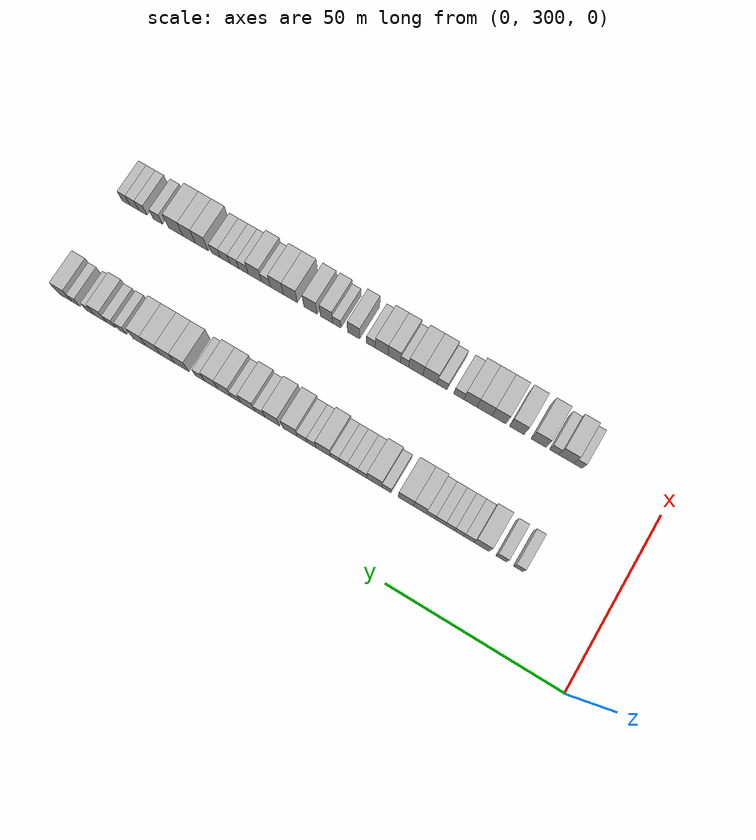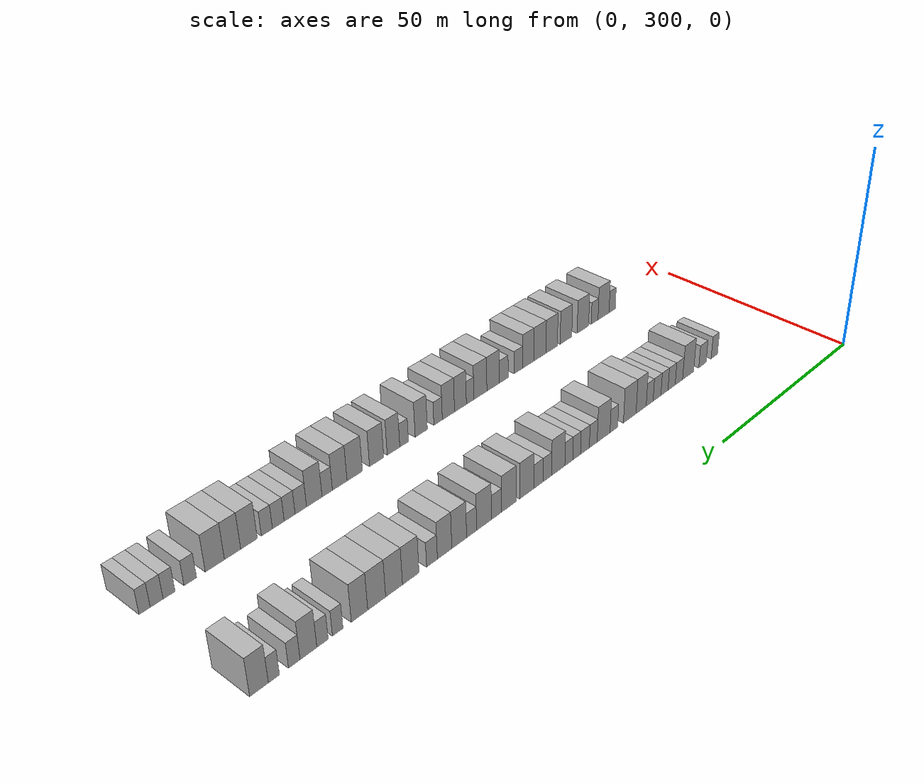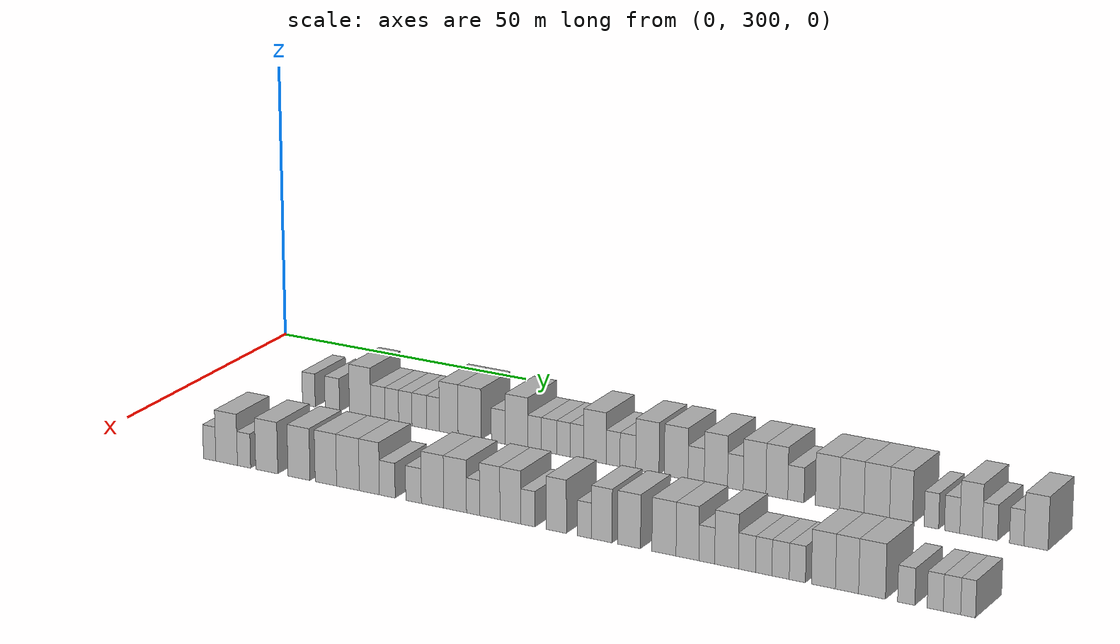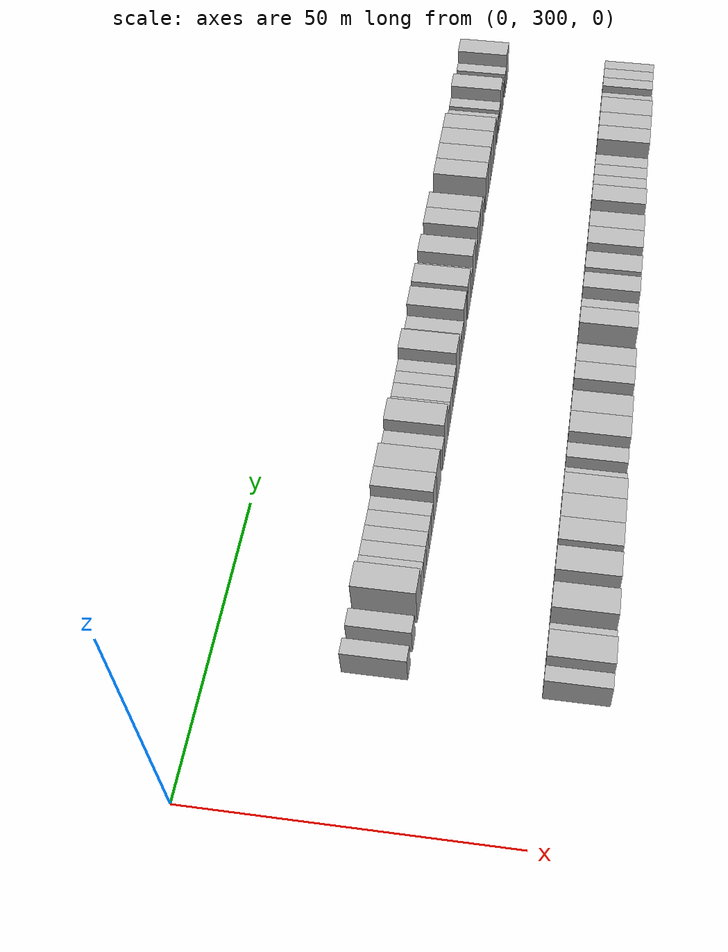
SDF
<sdf version="1.6">
 <world name="default">
  <model name="building_188">
   <static>1</static>
   <pose>25.0000 323.9807 0 0.000000 0.000000 0.000000</pose>
   <link name="link">
    <pose>0 0 3.00 0 0 0</pose>
    <collision name="collision"><geometry><box><size>10.0000 2.5865 6.0000</size></box></geometry></collision>
    <visual name="visual">
     <cast_shadows>0</cast_shadows>
     <geometry><box><size>10.0000 2.5865 6.0000</size></box></geometry>
     <material>
      <script>
       <uri>model://HANNAS_wall/materials/scripts</uri>
       <uri>model://HANNAS_wall/materials/textures</uri>
       <name>vrc/HANNAS_wall</name>
      </script>
     </material>
    </visual>
   </link>
  </model>
  <model name="building_189">
   <static>1</static>
   <pose>25.0000 328.7374 0 0.000000 0.000000 0.000000</pose>
   <link name="link">
    <pose>0 0 3.00 0 0 0</pose>
    <collision name="collision"><geometry><box><size>10.0000 2.9270 6.0000</size></box></geometry></collision>
    <visual name="visual">
     <cast_shadows>0</cast_shadows>
     <geometry><box><size>10.0000 2.9270 6.0000</size></box></geometry>
     <material>
      <script>
       <uri>model://HANNAS_wall/materials/scripts</uri>
       <uri>model://HANNAS_wall/materials/textures</uri>
       <name>vrc/HANNAS_wall</name>
      </script>
     </material>
    </visual>
   </link>
  </model>
  <model name="building_190">
   <static>1</static>
   <pose>25.0000 334.3430 0 0.000000 0.000000 0.000000</pose>
   <link name="link">
    <pose>0 0 4.50 0 0 0</pose>
    <collision name="collision"><geometry><box><size>10.0000 4.2843 9.0000</size></box></geometry></collision>
    <visual name="visual">
     <cast_shadows>0</cast_shadows>
     <geometry><box><size>10.0000 4.2843 9.0000</size></box></geometry>
     <material>
      <script>
       <uri>model://HANNAS_wall/materials/scripts</uri>
       <uri>model://HANNAS_wall/materials/textures</uri>
       <name>vrc/HANNAS_wall</name>
      </script>
     </material>
    </visual>
   </link>
  </model>
  <model name="building_191">
   <static>1</static>
   <pose>25.0000 337.9044 0 0.000000 0.000000 0.000000</pose>
   <link name="link">
    <pose>0 0 3.00 0 0 0</pose>
    <collision name="collision"><geometry><box><size>10.0000 2.8386 6.0000</size></box></geometry></collision>
    <visual name="visual">
     <cast_shadows>0</cast_shadows>
     <geometry><box><size>10.0000 2.8386 6.0000</size></box></geometry>
     <material>
      <script>
       <uri>model://HANNAS_wall/materials/scripts</uri>
       <uri>model://HANNAS_wall/materials/textures</uri>
       <name>vrc/HANNAS_wall</name>
      </script>
     </material>
    </visual>
   </link>
  </model>
  <model name="building_192">
   <static>1</static>
   <pose>25.0000 340.6883 0 0.000000 0.000000 0.000000</pose>
   <link name="link">
    <pose>0 0 3.00 0 0 0</pose>
    <collision name="collision"><geometry><box><size>10.0000 2.7292 6.0000</size></box></geometry></collision>
    <visual name="visual">
     <cast_shadows>0</cast_shadows>
     <geometry><box><size>10.0000 2.7292 6.0000</size></box></geometry>
     <material>
      <script>
       <uri>model://HANNAS_wall/materials/scripts</uri>
       <uri>model://HANNAS_wall/materials/textures</uri>
       <name>vrc/HANNAS_wall</name>
      </script>
     </material>
    </visual>
   </link>
  </model>
  <model name="building_193">
   <static>1</static>
   <pose>25.0000 343.3756 0 0.000000 0.000000 0.000000</pose>
   <link name="link">
    <pose>0 0 3.00 0 0 0</pose>
    <collision name="collision"><geometry><box><size>10.0000 2.6452 6.0000</size></box></geometry></collision>
    <visual name="visual">
     <cast_shadows>0</cast_shadows>
     <geometry><box><size>10.0000 2.6452 6.0000</size></box></geometry>
     <material>
      <script>
       <uri>model://HANNAS_wall/materials/scripts</uri>
       <uri>model://HANNAS_wall/materials/textures</uri>
       <name>vrc/HANNAS_wall</name>
      </script>
     </material>
    </visual>
   </link>
  </model>
  <model name="building_194">
   <static>1</static>
   <pose>25.0000 346.1372 0 0.000000 0.000000 0.000000</pose>
   <link name="link">
    <pose>0 0 3.00 0 0 0</pose>
    <collision name="collision"><geometry><box><size>10.0000 2.8781 6.0000</size></box></geometry></collision>
    <visual name="visual">
     <cast_shadows>0</cast_shadows>
     <geometry><box><size>10.0000 2.8781 6.0000</size></box></geometry>
     <material>
      <script>
       <uri>model://HANNAS_wall/materials/scripts</uri>
       <uri>model://HANNAS_wall/materials/textures</uri>
       <name>vrc/HANNAS_wall</name>
      </script>
     </material>
    </visual>
   </link>
  </model>
  <model name="building_195">
   <static>1</static>
   <pose>25.0000 348.8359 0 0.000000 0.000000 0.000000</pose>
   <link name="link">
    <pose>0 0 3.00 0 0 0</pose>
    <collision name="collision"><geometry><box><size>10.0000 2.5192 6.0000</size></box></geometry></collision>
    <visual name="visual">
     <cast_shadows>0</cast_shadows>
     <geometry><box><size>10.0000 2.5192 6.0000</size></box></geometry>
     <material>
      <script>
       <uri>model://HANNAS_wall/materials/scripts</uri>
       <uri>model://HANNAS_wall/materials/textures</uri>
       <name>vrc/HANNAS_wall</name>
      </script>
     </material>
    </visual>
   </link>
  </model>
  <model name="building_196">
   <static>1</static>
   <pose>25.0000 351.9249 0 0.000000 0.000000 0.000000</pose>
   <link name="link">
    <pose>0 0 4.50 0 0 0</pose>
    <collision name="collision"><geometry><box><size>10.0000 3.6588 9.0000</size></box></geometry></collision>
    <visual name="visual">
     <cast_shadows>0</cast_shadows>
     <geometry><box><size>10.0000 3.6588 9.0000</size></box></geometry>
     <material>
      <script>
       <uri>model://HANNAS_wall/materials/scripts</uri>
       <uri>model://HANNAS_wall/materials/textures</uri>
       <name>vrc/HANNAS_wall</name>
      </script>
     </material>
    </visual>
   </link>
  </model>
  <model name="building_197">
   <static>1</static>
   <pose>25.0000 355.9937 0 0.000000 0.000000 0.000000</pose>
   <link name="link">
    <pose>0 0 4.50 0 0 0</pose>
    <collision name="collision"><geometry><box><size>10.0000 4.4787 9.0000</size></box></geometry></collision>
    <visual name="visual">
     <cast_shadows>0</cast_shadows>
     <geometry><box><size>10.0000 4.4787 9.0000</size></box></geometry>
     <material>
      <script>
       <uri>model://HANNAS_wall/materials/scripts</uri>
       <uri>model://HANNAS_wall/materials/textures</uri>
       <name>vrc/HANNAS_wall</name>
      </script>
     </material>
    </visual>
   </link>
  </model>
  <model name="building_198">
   <static>1</static>
   <pose>25.0000 361.5609 0 0.000000 0.000000 0.000000</pose>
   <link name="link">
    <pose>0 0 3.00 0 0 0</pose>
    <collision name="collision"><geometry><box><size>10.0000 2.6557 6.0000</size></box></geometry></collision>
    <visual name="visual">
     <cast_shadows>0</cast_shadows>
     <geometry><box><size>10.0000 2.6557 6.0000</size></box></geometry>
     <material>
      <script>
       <uri>model://HANNAS_wall/materials/scripts</uri>
       <uri>model://HANNAS_wall/materials/textures</uri>
       <name>vrc/HANNAS_wall</name>
      </script>
     </material>
    </visual>
   </link>
  </model>
  <model name="building_199">
   <static>1</static>
   <pose>25.0000 365.0774 0 0.000000 0.000000 0.000000</pose>
   <link name="link">
    <pose>0 0 4.50 0 0 0</pose>
    <collision name="collision"><geometry><box><size>10.0000 4.3772 9.0000</size></box></geometry></collision>
    <visual name="visual">
     <cast_shadows>0</cast_shadows>
     <geometry><box><size>10.0000 4.3772 9.0000</size></box></geometry>
     <material>
      <script>
       <uri>model://HANNAS_wall/materials/scripts</uri>
       <uri>model://HANNAS_wall/materials/textures</uri>
       <name>vrc/HANNAS_wall</name>
      </script>
     </material>
    </visual>
   </link>
  </model>
  <model name="building_200">
   <static>1</static>
   <pose>25.0000 368.5722 0 0.000000 0.000000 0.000000</pose>
   <link name="link">
    <pose>0 0 3.00 0 0 0</pose>
    <collision name="collision"><geometry><box><size>10.0000 2.6124 6.0000</size></box></geometry></collision>
    <visual name="visual">
     <cast_shadows>0</cast_shadows>
     <geometry><box><size>10.0000 2.6124 6.0000</size></box></geometry>
     <material>
      <script>
       <uri>model://HANNAS_wall/materials/scripts</uri>
       <uri>model://HANNAS_wall/materials/textures</uri>
       <name>vrc/HANNAS_wall</name>
      </script>
     </material>
    </visual>
   </link>
  </model>
  <model name="building_201">
   <static>1</static>
   <pose>25.0000 371.3491 0 0.000000 0.000000 0.000000</pose>
   <link name="link">
    <pose>0 0 3.00 0 0 0</pose>
    <collision name="collision"><geometry><box><size>10.0000 2.9415 6.0000</size></box></geometry></collision>
    <visual name="visual">
     <cast_shadows>0</cast_shadows>
     <geometry><box><size>10.0000 2.9415 6.0000</size></box></geometry>
     <material>
      <script>
       <uri>model://HANNAS_wall/materials/scripts</uri>
       <uri>model://HANNAS_wall/materials/textures</uri>
       <name>vrc/HANNAS_wall</name>
      </script>
     </material>
    </visual>
   </link>
  </model>
  <model name="building_202">
   <static>1</static>
   <pose>25.0000 374.0878 0 0.000000 0.000000 0.000000</pose>
   <link name="link">
    <pose>0 0 3.00 0 0 0</pose>
    <collision name="collision"><geometry><box><size>10.0000 2.5358 6.0000</size></box></geometry></collision>
    <visual name="visual">
     <cast_shadows>0</cast_shadows>
     <geometry><box><size>10.0000 2.5358 6.0000</size></box></geometry>
     <material>
      <script>
       <uri>model://HANNAS_wall/materials/scripts</uri>
       <uri>model://HANNAS_wall/materials/textures</uri>
       <name>vrc/HANNAS_wall</name>
      </script>
     </material>
    </visual>
   </link>
  </model>
  <model name="building_203">
   <static>1</static>
   <pose>25.0000 376.6327 0 0.000000 0.000000 0.000000</pose>
   <link name="link">
    <pose>0 0 3.00 0 0 0</pose>
    <collision name="collision"><geometry><box><size>10.0000 2.5542 6.0000</size></box></geometry></collision>
    <visual name="visual">
     <cast_shadows>0</cast_shadows>
     <geometry><box><size>10.0000 2.5542 6.0000</size></box></geometry>
     <material>
      <script>
       <uri>model://HANNAS_wall/materials/scripts</uri>
       <uri>model://HANNAS_wall/materials/textures</uri>
       <name>vrc/HANNAS_wall</name>
      </script>
     </material>
    </visual>
   </link>
  </model>
  <model name="building_204">
   <static>1</static>
   <pose>25.0000 380.0240 0 0.000000 0.000000 0.000000</pose>
   <link name="link">
    <pose>0 0 4.50 0 0 0</pose>
    <collision name="collision"><geometry><box><size>10.0000 4.2283 9.0000</size></box></geometry></collision>
    <visual name="visual">
     <cast_shadows>0</cast_shadows>
     <geometry><box><size>10.0000 4.2283 9.0000</size></box></geometry>
     <material>
      <script>
       <uri>model://HANNAS_wall/materials/scripts</uri>
       <uri>model://HANNAS_wall/materials/textures</uri>
       <name>vrc/HANNAS_wall</name>
      </script>
     </material>
    </visual>
   </link>
  </model>
  <model name="building_205">
   <static>1</static>
   <pose>25.0000 383.4367 0 0.000000 0.000000 0.000000</pose>
   <link name="link">
    <pose>0 0 3.00 0 0 0</pose>
    <collision name="collision"><geometry><box><size>10.0000 2.5972 6.0000</size></box></geometry></collision>
    <visual name="visual">
     <cast_shadows>0</cast_shadows>
     <geometry><box><size>10.0000 2.5972 6.0000</size></box></geometry>
     <material>
      <script>
       <uri>model://HANNAS_wall/materials/scripts</uri>
       <uri>model://HANNAS_wall/materials/textures</uri>
       <name>vrc/HANNAS_wall</name>
      </script>
     </material>
    </visual>
   </link>
  </model>
  <model name="building_206">
   <static>1</static>
   <pose>25.0000 386.1969 0 0.000000 0.000000 0.000000</pose>
   <link name="link">
    <pose>0 0 3.00 0 0 0</pose>
    <collision name="collision"><geometry><box><size>10.0000 2.9231 6.0000</size></box></geometry></collision>
    <visual name="visual">
     <cast_shadows>0</cast_shadows>
     <geometry><box><size>10.0000 2.9231 6.0000</size></box></geometry>
     <material>
      <script>
       <uri>model://HANNAS_wall/materials/scripts</uri>
       <uri>model://HANNAS_wall/materials/textures</uri>
       <name>vrc/HANNAS_wall</name>
      </script>
     </material>
    </visual>
   </link>
  </model>
  <model name="building_207">
   <static>1</static>
   <pose>25.0000 389.8238 0 0.000000 0.000000 0.000000</pose>
   <link name="link">
    <pose>0 0 4.50 0 0 0</pose>
    <collision name="collision"><geometry><box><size>10.0000 4.3306 9.0000</size></box></geometry></collision>
    <visual name="visual">
     <cast_shadows>0</cast_shadows>
     <geometry><box><size>10.0000 4.3306 9.0000</size></box></geometry>
     <material>
      <script>
       <uri>model://HANNAS_wall/materials/scripts</uri>
       <uri>model://HANNAS_wall/materials/textures</uri>
       <name>vrc/HANNAS_wall</name>
      </script>
     </material>
    </visual>
   </link>
  </model>
  <model name="building_208">
   <static>1</static>
   <pose>25.0000 395.1652 0 0.000000 0.000000 0.000000</pose>
   <link name="link">
    <pose>0 0 4.50 0 0 0</pose>
    <collision name="collision"><geometry><box><size>10.0000 4.3523 9.0000</size></box></geometry></collision>
    <visual name="visual">
     <cast_shadows>0</cast_shadows>
     <geometry><box><size>10.0000 4.3523 9.0000</size></box></geometry>
     <material>
      <script>
       <uri>model://HANNAS_wall/materials/scripts</uri>
       <uri>model://HANNAS_wall/materials/textures</uri>
       <name>vrc/HANNAS_wall</name>
      </script>
     </material>
    </visual>
   </link>
  </model>
  <model name="building_209">
   <static>1</static>
   <pose>25.0000 398.8283 0 0.000000 0.000000 0.000000</pose>
   <link name="link">
    <pose>0 0 3.00 0 0 0</pose>
    <collision name="collision"><geometry><box><size>10.0000 2.9739 6.0000</size></box></geometry></collision>
    <visual name="visual">
     <cast_shadows>0</cast_shadows>
     <geometry><box><size>10.0000 2.9739 6.0000</size></box></geometry>
     <material>
      <script>
       <uri>model://HANNAS_wall/materials/scripts</uri>
       <uri>model://HANNAS_wall/materials/textures</uri>
       <name>vrc/HANNAS_wall</name>
      </script>
     </material>
    </visual>
   </link>
  </model>
  <model name="building_210">
   <static>1</static>
   <pose>25.0000 402.4462 0 0.000000 0.000000 0.000000</pose>
   <link name="link">
    <pose>0 0 4.50 0 0 0</pose>
    <collision name="collision"><geometry><box><size>10.0000 4.2618 9.0000</size></box></geometry></collision>
    <visual name="visual">
     <cast_shadows>0</cast_shadows>
     <geometry><box><size>10.0000 4.2618 9.0000</size></box></geometry>
     <material>
      <script>
       <uri>model://HANNAS_wall/materials/scripts</uri>
       <uri>model://HANNAS_wall/materials/textures</uri>
       <name>vrc/HANNAS_wall</name>
      </script>
     </material>
    </visual>
   </link>
  </model>
  <model name="building_211">
   <static>1</static>
   <pose>25.0000 405.9986 0 0.000000 0.000000 0.000000</pose>
   <link name="link">
    <pose>0 0 3.00 0 0 0</pose>
    <collision name="collision"><geometry><box><size>10.0000 2.8429 6.0000</size></box></geometry></collision>
    <visual name="visual">
     <cast_shadows>0</cast_shadows>
     <geometry><box><size>10.0000 2.8429 6.0000</size></box></geometry>
     <material>
      <script>
       <uri>model://HANNAS_wall/materials/scripts</uri>
       <uri>model://HANNAS_wall/materials/textures</uri>
       <name>vrc/HANNAS_wall</name>
      </script>
     </material>
    </visual>
   </link>
  </model>
  <model name="building_212">
   <static>1</static>
   <pose>25.0000 409.4675 0 0.000000 0.000000 0.000000</pose>
   <link name="link">
    <pose>0 0 4.50 0 0 0</pose>
    <collision name="collision"><geometry><box><size>10.0000 4.0949 9.0000</size></box></geometry></collision>
    <visual name="visual">
     <cast_shadows>0</cast_shadows>
     <geometry><box><size>10.0000 4.0949 9.0000</size></box></geometry>
     <material>
      <script>
       <uri>model://HANNAS_wall/materials/scripts</uri>
       <uri>model://HANNAS_wall/materials/textures</uri>
       <name>vrc/HANNAS_wall</name>
      </script>
     </material>
    </visual>
   </link>
  </model>
  <model name="building_213">
   <static>1</static>
   <pose>25.0000 413.4769 0 0.000000 0.000000 0.000000</pose>
   <link name="link">
    <pose>0 0 4.50 0 0 0</pose>
    <collision name="collision"><geometry><box><size>10.0000 3.9239 9.0000</size></box></geometry></collision>
    <visual name="visual">
     <cast_shadows>0</cast_shadows>
     <geometry><box><size>10.0000 3.9239 9.0000</size></box></geometry>
     <material>
      <script>
       <uri>model://HANNAS_wall/materials/scripts</uri>
       <uri>model://HANNAS_wall/materials/textures</uri>
       <name>vrc/HANNAS_wall</name>
      </script>
     </material>
    </visual>
   </link>
  </model>
  <model name="building_214">
   <static>1</static>
   <pose>25.0000 416.8911 0 0.000000 0.000000 0.000000</pose>
   <link name="link">
    <pose>0 0 3.00 0 0 0</pose>
    <collision name="collision"><geometry><box><size>10.0000 2.9045 6.0000</size></box></geometry></collision>
    <visual name="visual">
     <cast_shadows>0</cast_shadows>
     <geometry><box><size>10.0000 2.9045 6.0000</size></box></geometry>
     <material>
      <script>
       <uri>model://HANNAS_wall/materials/scripts</uri>
       <uri>model://HANNAS_wall/materials/textures</uri>
       <name>vrc/HANNAS_wall</name>
      </script>
     </material>
    </visual>
   </link>
  </model>
  <model name="building_215">
   <static>1</static>
   <pose>25.0000 422.4939 0 0.000000 0.000000 0.000000</pose>
   <link name="link">
    <pose>0 0 4.50 0 0 0</pose>
    <collision name="collision"><geometry><box><size>10.0000 4.3011 9.0000</size></box></geometry></collision>
    <visual name="visual">
     <cast_shadows>0</cast_shadows>
     <geometry><box><size>10.0000 4.3011 9.0000</size></box></geometry>
     <material>
      <script>
       <uri>model://HANNAS_wall/materials/scripts</uri>
       <uri>model://HANNAS_wall/materials/textures</uri>
       <name>vrc/HANNAS_wall</name>
      </script>
     </material>
    </visual>
   </link>
  </model>
  <model name="building_216">
   <static>1</static>
   <pose>25.0000 426.7896 0 0.000000 0.000000 0.000000</pose>
   <link name="link">
    <pose>0 0 4.50 0 0 0</pose>
    <collision name="collision"><geometry><box><size>10.0000 4.2901 9.0000</size></box></geometry></collision>
    <visual name="visual">
     <cast_shadows>0</cast_shadows>
     <geometry><box><size>10.0000 4.2901 9.0000</size></box></geometry>
     <material>
      <script>
       <uri>model://HANNAS_wall/materials/scripts</uri>
       <uri>model://HANNAS_wall/materials/textures</uri>
       <name>vrc/HANNAS_wall</name>
      </script>
     </material>
    </visual>
   </link>
  </model>
  <model name="building_217">
   <static>1</static>
   <pose>25.0000 431.1715 0 0.000000 0.000000 0.000000</pose>
   <link name="link">
    <pose>0 0 4.50 0 0 0</pose>
    <collision name="collision"><geometry><box><size>10.0000 4.4737 9.0000</size></box></geometry></collision>
    <visual name="visual">
     <cast_shadows>0</cast_shadows>
     <geometry><box><size>10.0000 4.4737 9.0000</size></box></geometry>
     <material>
      <script>
       <uri>model://HANNAS_wall/materials/scripts</uri>
       <uri>model://HANNAS_wall/materials/textures</uri>
       <name>vrc/HANNAS_wall</name>
      </script>
     </material>
    </visual>
   </link>
  </model>
  <model name="building_218">
   <static>1</static>
   <pose>25.0000 435.4117 0 0.000000 0.000000 0.000000</pose>
   <link name="link">
    <pose>0 0 4.50 0 0 0</pose>
    <collision name="collision"><geometry><box><size>10.0000 4.0068 9.0000</size></box></geometry></collision>
    <visual name="visual">
     <cast_shadows>0</cast_shadows>
     <geometry><box><size>10.0000 4.0068 9.0000</size></box></geometry>
     <material>
      <script>
       <uri>model://HANNAS_wall/materials/scripts</uri>
       <uri>model://HANNAS_wall/materials/textures</uri>
       <name>vrc/HANNAS_wall</name>
      </script>
     </material>
    </visual>
   </link>
  </model>
  <model name="building_219">
   <static>1</static>
   <pose>25.0000 440.6650 0 0.000000 0.000000 0.000000</pose>
   <link name="link">
    <pose>0 0 3.00 0 0 0</pose>
    <collision name="collision"><geometry><box><size>10.0000 2.4998 6.0000</size></box></geometry></collision>
    <visual name="visual">
     <cast_shadows>0</cast_shadows>
     <geometry><box><size>10.0000 2.4998 6.0000</size></box></geometry>
     <material>
      <script>
       <uri>model://HANNAS_wall/materials/scripts</uri>
       <uri>model://HANNAS_wall/materials/textures</uri>
       <name>vrc/HANNAS_wall</name>
      </script>
     </material>
    </visual>
   </link>
  </model>
  <model name="building_220">
   <static>1</static>
   <pose>25.0000 444.2324 0 0.000000 0.000000 0.000000</pose>
   <link name="link">
    <pose>0 0 3.00 0 0 0</pose>
    <collision name="collision"><geometry><box><size>10.0000 2.6349 6.0000</size></box></geometry></collision>
    <visual name="visual">
     <cast_shadows>0</cast_shadows>
     <geometry><box><size>10.0000 2.6349 6.0000</size></box></geometry>
     <material>
      <script>
       <uri>model://HANNAS_wall/materials/scripts</uri>
       <uri>model://HANNAS_wall/materials/textures</uri>
       <name>vrc/HANNAS_wall</name>
      </script>
     </material>
    </visual>
   </link>
  </model>
  <model name="building_221">
   <static>1</static>
   <pose>25.0000 447.4698 0 0.000000 0.000000 0.000000</pose>
   <link name="link">
    <pose>0 0 4.50 0 0 0</pose>
    <collision name="collision"><geometry><box><size>10.0000 3.8400 9.0000</size></box></geometry></collision>
    <visual name="visual">
     <cast_shadows>0</cast_shadows>
     <geometry><box><size>10.0000 3.8400 9.0000</size></box></geometry>
     <material>
      <script>
       <uri>model://HANNAS_wall/materials/scripts</uri>
       <uri>model://HANNAS_wall/materials/textures</uri>
       <name>vrc/HANNAS_wall</name>
      </script>
     </material>
    </visual>
   </link>
  </model>
  <model name="building_222">
   <static>1</static>
   <pose>25.0000 450.6945 0 0.000000 0.000000 0.000000</pose>
   <link name="link">
    <pose>0 0 3.00 0 0 0</pose>
    <collision name="collision"><geometry><box><size>10.0000 2.6095 6.0000</size></box></geometry></collision>
    <visual name="visual">
     <cast_shadows>0</cast_shadows>
     <geometry><box><size>10.0000 2.6095 6.0000</size></box></geometry>
     <material>
      <script>
       <uri>model://HANNAS_wall/materials/scripts</uri>
       <uri>model://HANNAS_wall/materials/textures</uri>
       <name>vrc/HANNAS_wall</name>
      </script>
     </material>
    </visual>
   </link>
  </model>
  <model name="building_223">
   <static>1</static>
   <pose>25.0000 455.2164 0 0.000000 0.000000 0.000000</pose>
   <link name="link">
    <pose>0 0 3.00 0 0 0</pose>
    <collision name="collision"><geometry><box><size>10.0000 2.4341 6.0000</size></box></geometry></collision>
    <visual name="visual">
     <cast_shadows>0</cast_shadows>
     <geometry><box><size>10.0000 2.4341 6.0000</size></box></geometry>
     <material>
      <script>
       <uri>model://HANNAS_wall/materials/scripts</uri>
       <uri>model://HANNAS_wall/materials/textures</uri>
       <name>vrc/HANNAS_wall</name>
      </script>
     </material>
    </visual>
   </link>
  </model>
  <model name="building_224">
   <static>1</static>
   <pose>25.0000 458.4629 0 0.000000 0.000000 0.000000</pose>
   <link name="link">
    <pose>0 0 4.50 0 0 0</pose>
    <collision name="collision"><geometry><box><size>10.0000 4.0589 9.0000</size></box></geometry></collision>
    <visual name="visual">
     <cast_shadows>0</cast_shadows>
     <geometry><box><size>10.0000 4.0589 9.0000</size></box></geometry>
     <material>
      <script>
       <uri>model://HANNAS_wall/materials/scripts</uri>
       <uri>model://HANNAS_wall/materials/textures</uri>
       <name>vrc/HANNAS_wall</name>
      </script>
     </material>
    </visual>
   </link>
  </model>
  <model name="building_410">
   <static>1</static>
   <pose>55.0000 323.6067 0 0.000000 0.000000 0.000000</pose>
   <link name="link">
    <pose>0 0 3.00 0 0 0</pose>
    <collision name="collision"><geometry><box><size>10.0000 2.4606 6.0000</size></box></geometry></collision>
    <visual name="visual">
     <cast_shadows>0</cast_shadows>
     <geometry><box><size>10.0000 2.4606 6.0000</size></box></geometry>
     <material>
      <script>
       <uri>model://HANNAS_wall/materials/scripts</uri>
       <uri>model://HANNAS_wall/materials/textures</uri>
       <name>vrc/HANNAS_wall</name>
      </script>
     </material>
    </visual>
   </link>
  </model>
  <model name="building_411">
   <static>1</static>
   <pose>55.0000 326.9753 0 0.000000 0.000000 0.000000</pose>
   <link name="link">
    <pose>0 0 4.50 0 0 0</pose>
    <collision name="collision"><geometry><box><size>10.0000 4.2767 9.0000</size></box></geometry></collision>
    <visual name="visual">
     <cast_shadows>0</cast_shadows>
     <geometry><box><size>10.0000 4.2767 9.0000</size></box></geometry>
     <material>
      <script>
       <uri>model://HANNAS_wall/materials/scripts</uri>
       <uri>model://HANNAS_wall/materials/textures</uri>
       <name>vrc/HANNAS_wall</name>
      </script>
     </material>
    </visual>
   </link>
  </model>
  <model name="building_412">
   <static>1</static>
   <pose>55.0000 330.4139 0 0.000000 0.000000 0.000000</pose>
   <link name="link">
    <pose>0 0 3.00 0 0 0</pose>
    <collision name="collision"><geometry><box><size>10.0000 2.6005 6.0000</size></box></geometry></collision>
    <visual name="visual">
     <cast_shadows>0</cast_shadows>
     <geometry><box><size>10.0000 2.6005 6.0000</size></box></geometry>
     <material>
      <script>
       <uri>model://HANNAS_wall/materials/scripts</uri>
       <uri>model://HANNAS_wall/materials/textures</uri>
       <name>vrc/HANNAS_wall</name>
      </script>
     </material>
    </visual>
   </link>
  </model>
  <model name="building_413">
   <static>1</static>
   <pose>55.0000 334.8747 0 0.000000 0.000000 0.000000</pose>
   <link name="link">
    <pose>0 0 4.50 0 0 0</pose>
    <collision name="collision"><geometry><box><size>10.0000 4.3212 9.0000</size></box></geometry></collision>
    <visual name="visual">
     <cast_shadows>0</cast_shadows>
     <geometry><box><size>10.0000 4.3212 9.0000</size></box></geometry>
     <material>
      <script>
       <uri>model://HANNAS_wall/materials/scripts</uri>
       <uri>model://HANNAS_wall/materials/textures</uri>
       <name>vrc/HANNAS_wall</name>
      </script>
     </material>
    </visual>
   </link>
  </model>
  <model name="building_414">
   <static>1</static>
   <pose>55.0000 341.1631 0 0.000000 0.000000 0.000000</pose>
   <link name="link">
    <pose>0 0 4.50 0 0 0</pose>
    <collision name="collision"><geometry><box><size>10.0000 4.2555 9.0000</size></box></geometry></collision>
    <visual name="visual">
     <cast_shadows>0</cast_shadows>
     <geometry><box><size>10.0000 4.2555 9.0000</size></box></geometry>
     <material>
      <script>
       <uri>model://HANNAS_wall/materials/scripts</uri>
       <uri>model://HANNAS_wall/materials/textures</uri>
       <name>vrc/HANNAS_wall</name>
      </script>
     </material>
    </visual>
   </link>
  </model>
  <model name="building_415">
   <static>1</static>
   <pose>55.0000 346.3459 0 0.000000 0.000000 0.000000</pose>
   <link name="link">
    <pose>0 0 4.50 0 0 0</pose>
    <collision name="collision"><geometry><box><size>10.0000 4.1101 9.0000</size></box></geometry></collision>
    <visual name="visual">
     <cast_shadows>0</cast_shadows>
     <geometry><box><size>10.0000 4.1101 9.0000</size></box></geometry>
     <material>
      <script>
       <uri>model://HANNAS_wall/materials/scripts</uri>
       <uri>model://HANNAS_wall/materials/textures</uri>
       <name>vrc/HANNAS_wall</name>
      </script>
     </material>
    </visual>
   </link>
  </model>
  <model name="building_416">
   <static>1</static>
   <pose>55.0000 350.5817 0 0.000000 0.000000 0.000000</pose>
   <link name="link">
    <pose>0 0 4.50 0 0 0</pose>
    <collision name="collision"><geometry><box><size>10.0000 4.3614 9.0000</size></box></geometry></collision>
    <visual name="visual">
     <cast_shadows>0</cast_shadows>
     <geometry><box><size>10.0000 4.3614 9.0000</size></box></geometry>
     <material>
      <script>
       <uri>model://HANNAS_wall/materials/scripts</uri>
       <uri>model://HANNAS_wall/materials/textures</uri>
       <name>vrc/HANNAS_wall</name>
      </script>
     </material>
    </visual>
   </link>
  </model>
  <model name="building_417">
   <static>1</static>
   <pose>55.0000 354.6729 0 0.000000 0.000000 0.000000</pose>
   <link name="link">
    <pose>0 0 4.50 0 0 0</pose>
    <collision name="collision"><geometry><box><size>10.0000 3.8210 9.0000</size></box></geometry></collision>
    <visual name="visual">
     <cast_shadows>0</cast_shadows>
     <geometry><box><size>10.0000 3.8210 9.0000</size></box></geometry>
     <material>
      <script>
       <uri>model://HANNAS_wall/materials/scripts</uri>
       <uri>model://HANNAS_wall/materials/textures</uri>
       <name>vrc/HANNAS_wall</name>
      </script>
     </material>
    </visual>
   </link>
  </model>
  <model name="building_418">
   <static>1</static>
   <pose>55.0000 358.0732 0 0.000000 0.000000 0.000000</pose>
   <link name="link">
    <pose>0 0 3.00 0 0 0</pose>
    <collision name="collision"><geometry><box><size>10.0000 2.9796 6.0000</size></box></geometry></collision>
    <visual name="visual">
     <cast_shadows>0</cast_shadows>
     <geometry><box><size>10.0000 2.9796 6.0000</size></box></geometry>
     <material>
      <script>
       <uri>model://HANNAS_wall/materials/scripts</uri>
       <uri>model://HANNAS_wall/materials/textures</uri>
       <name>vrc/HANNAS_wall</name>
      </script>
     </material>
    </visual>
   </link>
  </model>
  <model name="building_419">
   <static>1</static>
   <pose>55.0000 363.0201 0 0.000000 0.000000 0.000000</pose>
   <link name="link">
    <pose>0 0 3.00 0 0 0</pose>
    <collision name="collision"><geometry><box><size>10.0000 2.9141 6.0000</size></box></geometry></collision>
    <visual name="visual">
     <cast_shadows>0</cast_shadows>
     <geometry><box><size>10.0000 2.9141 6.0000</size></box></geometry>
     <material>
      <script>
       <uri>model://HANNAS_wall/materials/scripts</uri>
       <uri>model://HANNAS_wall/materials/textures</uri>
       <name>vrc/HANNAS_wall</name>
      </script>
     </material>
    </visual>
   </link>
  </model>
  <model name="building_420">
   <static>1</static>
   <pose>55.0000 366.5720 0 0.000000 0.000000 0.000000</pose>
   <link name="link">
    <pose>0 0 4.50 0 0 0</pose>
    <collision name="collision"><geometry><box><size>10.0000 4.1897 9.0000</size></box></geometry></collision>
    <visual name="visual">
     <cast_shadows>0</cast_shadows>
     <geometry><box><size>10.0000 4.1897 9.0000</size></box></geometry>
     <material>
      <script>
       <uri>model://HANNAS_wall/materials/scripts</uri>
       <uri>model://HANNAS_wall/materials/textures</uri>
       <name>vrc/HANNAS_wall</name>
      </script>
     </material>
    </visual>
   </link>
  </model>
  <model name="building_421">
   <static>1</static>
   <pose>55.0000 370.7902 0 0.000000 0.000000 0.000000</pose>
   <link name="link">
    <pose>0 0 4.50 0 0 0</pose>
    <collision name="collision"><geometry><box><size>10.0000 4.2467 9.0000</size></box></geometry></collision>
    <visual name="visual">
     <cast_shadows>0</cast_shadows>
     <geometry><box><size>10.0000 4.2467 9.0000</size></box></geometry>
     <material>
      <script>
       <uri>model://HANNAS_wall/materials/scripts</uri>
       <uri>model://HANNAS_wall/materials/textures</uri>
       <name>vrc/HANNAS_wall</name>
      </script>
     </material>
    </visual>
   </link>
  </model>
  <model name="building_422">
   <static>1</static>
   <pose>55.0000 374.1208 0 0.000000 0.000000 0.000000</pose>
   <link name="link">
    <pose>0 0 3.00 0 0 0</pose>
    <collision name="collision"><geometry><box><size>10.0000 2.4144 6.0000</size></box></geometry></collision>
    <visual name="visual">
     <cast_shadows>0</cast_shadows>
     <geometry><box><size>10.0000 2.4144 6.0000</size></box></geometry>
     <material>
      <script>
       <uri>model://HANNAS_wall/materials/scripts</uri>
       <uri>model://HANNAS_wall/materials/textures</uri>
       <name>vrc/HANNAS_wall</name>
      </script>
     </material>
    </visual>
   </link>
  </model>
  <model name="building_423">
   <static>1</static>
   <pose>55.0000 377.2013 0 0.000000 0.000000 0.000000</pose>
   <link name="link">
    <pose>0 0 4.50 0 0 0</pose>
    <collision name="collision"><geometry><box><size>10.0000 3.7468 9.0000</size></box></geometry></collision>
    <visual name="visual">
     <cast_shadows>0</cast_shadows>
     <geometry><box><size>10.0000 3.7468 9.0000</size></box></geometry>
     <material>
      <script>
       <uri>model://HANNAS_wall/materials/scripts</uri>
       <uri>model://HANNAS_wall/materials/textures</uri>
       <name>vrc/HANNAS_wall</name>
      </script>
     </material>
    </visual>
   </link>
  </model>
  <model name="building_424">
   <static>1</static>
   <pose>55.0000 380.9820 0 0.000000 0.000000 0.000000</pose>
   <link name="link">
    <pose>0 0 4.50 0 0 0</pose>
    <collision name="collision"><geometry><box><size>10.0000 3.8145 9.0000</size></box></geometry></collision>
    <visual name="visual">
     <cast_shadows>0</cast_shadows>
     <geometry><box><size>10.0000 3.8145 9.0000</size></box></geometry>
     <material>
      <script>
       <uri>model://HANNAS_wall/materials/scripts</uri>
       <uri>model://HANNAS_wall/materials/textures</uri>
       <name>vrc/HANNAS_wall</name>
      </script>
     </material>
    </visual>
   </link>
  </model>
  <model name="building_425">
   <static>1</static>
   <pose>55.0000 384.1921 0 0.000000 0.000000 0.000000</pose>
   <link name="link">
    <pose>0 0 3.00 0 0 0</pose>
    <collision name="collision"><geometry><box><size>10.0000 2.6056 6.0000</size></box></geometry></collision>
    <visual name="visual">
     <cast_shadows>0</cast_shadows>
     <geometry><box><size>10.0000 2.6056 6.0000</size></box></geometry>
     <material>
      <script>
       <uri>model://HANNAS_wall/materials/scripts</uri>
       <uri>model://HANNAS_wall/materials/textures</uri>
       <name>vrc/HANNAS_wall</name>
      </script>
     </material>
    </visual>
   </link>
  </model>
  <model name="building_426">
   <static>1</static>
   <pose>55.0000 389.3235 0 0.000000 0.000000 0.000000</pose>
   <link name="link">
    <pose>0 0 4.50 0 0 0</pose>
    <collision name="collision"><geometry><box><size>10.0000 3.6574 9.0000</size></box></geometry></collision>
    <visual name="visual">
     <cast_shadows>0</cast_shadows>
     <geometry><box><size>10.0000 3.6574 9.0000</size></box></geometry>
     <material>
      <script>
       <uri>model://HANNAS_wall/materials/scripts</uri>
       <uri>model://HANNAS_wall/materials/textures</uri>
       <name>vrc/HANNAS_wall</name>
      </script>
     </material>
    </visual>
   </link>
  </model>
  <model name="building_427">
   <static>1</static>
   <pose>55.0000 394.4260 0 0.000000 0.000000 0.000000</pose>
   <link name="link">
    <pose>0 0 3.00 0 0 0</pose>
    <collision name="collision"><geometry><box><size>10.0000 2.5474 6.0000</size></box></geometry></collision>
    <visual name="visual">
     <cast_shadows>0</cast_shadows>
     <geometry><box><size>10.0000 2.5474 6.0000</size></box></geometry>
     <material>
      <script>
       <uri>model://HANNAS_wall/materials/scripts</uri>
       <uri>model://HANNAS_wall/materials/textures</uri>
       <name>vrc/HANNAS_wall</name>
      </script>
     </material>
    </visual>
   </link>
  </model>
  <model name="building_428">
   <static>1</static>
   <pose>55.0000 397.5310 0 0.000000 0.000000 0.000000</pose>
   <link name="link">
    <pose>0 0 4.50 0 0 0</pose>
    <collision name="collision"><geometry><box><size>10.0000 3.6626 9.0000</size></box></geometry></collision>
    <visual name="visual">
     <cast_shadows>0</cast_shadows>
     <geometry><box><size>10.0000 3.6626 9.0000</size></box></geometry>
     <material>
      <script>
       <uri>model://HANNAS_wall/materials/scripts</uri>
       <uri>model://HANNAS_wall/materials/textures</uri>
       <name>vrc/HANNAS_wall</name>
      </script>
     </material>
    </visual>
   </link>
  </model>
  <model name="building_429">
   <static>1</static>
   <pose>55.0000 402.3799 0 0.000000 0.000000 0.000000</pose>
   <link name="link">
    <pose>0 0 4.50 0 0 0</pose>
    <collision name="collision"><geometry><box><size>10.0000 4.0353 9.0000</size></box></geometry></collision>
    <visual name="visual">
     <cast_shadows>0</cast_shadows>
     <geometry><box><size>10.0000 4.0353 9.0000</size></box></geometry>
     <material>
      <script>
       <uri>model://HANNAS_wall/materials/scripts</uri>
       <uri>model://HANNAS_wall/materials/textures</uri>
       <name>vrc/HANNAS_wall</name>
      </script>
     </material>
    </visual>
   </link>
  </model>
  <model name="building_430">
   <static>1</static>
   <pose>55.0000 408.5153 0 0.000000 0.000000 0.000000</pose>
   <link name="link">
    <pose>0 0 4.50 0 0 0</pose>
    <collision name="collision"><geometry><box><size>10.0000 4.2353 9.0000</size></box></geometry></collision>
    <visual name="visual">
     <cast_shadows>0</cast_shadows>
     <geometry><box><size>10.0000 4.2353 9.0000</size></box></geometry>
     <material>
      <script>
       <uri>model://HANNAS_wall/materials/scripts</uri>
       <uri>model://HANNAS_wall/materials/textures</uri>
       <name>vrc/HANNAS_wall</name>
      </script>
     </material>
    </visual>
   </link>
  </model>
  <model name="building_431">
   <static>1</static>
   <pose>55.0000 412.6235 0 0.000000 0.000000 0.000000</pose>
   <link name="link">
    <pose>0 0 4.50 0 0 0</pose>
    <collision name="collision"><geometry><box><size>10.0000 3.9811 9.0000</size></box></geometry></collision>
    <visual name="visual">
     <cast_shadows>0</cast_shadows>
     <geometry><box><size>10.0000 3.9811 9.0000</size></box></geometry>
     <material>
      <script>
       <uri>model://HANNAS_wall/materials/scripts</uri>
       <uri>model://HANNAS_wall/materials/textures</uri>
       <name>vrc/HANNAS_wall</name>
      </script>
     </material>
    </visual>
   </link>
  </model>
  <model name="building_432">
   <static>1</static>
   <pose>55.0000 415.9909 0 0.000000 0.000000 0.000000</pose>
   <link name="link">
    <pose>0 0 3.00 0 0 0</pose>
    <collision name="collision"><geometry><box><size>10.0000 2.7537 6.0000</size></box></geometry></collision>
    <visual name="visual">
     <cast_shadows>0</cast_shadows>
     <geometry><box><size>10.0000 2.7537 6.0000</size></box></geometry>
     <material>
      <script>
       <uri>model://HANNAS_wall/materials/scripts</uri>
       <uri>model://HANNAS_wall/materials/textures</uri>
       <name>vrc/HANNAS_wall</name>
      </script>
     </material>
    </visual>
   </link>
  </model>
  <model name="building_433">
   <static>1</static>
   <pose>55.0000 419.4194 0 0.000000 0.000000 0.000000</pose>
   <link name="link">
    <pose>0 0 4.50 0 0 0</pose>
    <collision name="collision"><geometry><box><size>10.0000 4.1034 9.0000</size></box></geometry></collision>
    <visual name="visual">
     <cast_shadows>0</cast_shadows>
     <geometry><box><size>10.0000 4.1034 9.0000</size></box></geometry>
     <material>
      <script>
       <uri>model://HANNAS_wall/materials/scripts</uri>
       <uri>model://HANNAS_wall/materials/textures</uri>
       <name>vrc/HANNAS_wall</name>
      </script>
     </material>
    </visual>
   </link>
  </model>
  <model name="building_434">
   <static>1</static>
   <pose>55.0000 422.9424 0 0.000000 0.000000 0.000000</pose>
   <link name="link">
    <pose>0 0 3.00 0 0 0</pose>
    <collision name="collision"><geometry><box><size>10.0000 2.9425 6.0000</size></box></geometry></collision>
    <visual name="visual">
     <cast_shadows>0</cast_shadows>
     <geometry><box><size>10.0000 2.9425 6.0000</size></box></geometry>
     <material>
      <script>
       <uri>model://HANNAS_wall/materials/scripts</uri>
       <uri>model://HANNAS_wall/materials/textures</uri>
       <name>vrc/HANNAS_wall</name>
      </script>
     </material>
    </visual>
   </link>
  </model>
  <model name="building_435">
   <static>1</static>
   <pose>55.0000 425.8101 0 0.000000 0.000000 0.000000</pose>
   <link name="link">
    <pose>0 0 3.00 0 0 0</pose>
    <collision name="collision"><geometry><box><size>10.0000 2.7929 6.0000</size></box></geometry></collision>
    <visual name="visual">
     <cast_shadows>0</cast_shadows>
     <geometry><box><size>10.0000 2.7929 6.0000</size></box></geometry>
     <material>
      <script>
       <uri>model://HANNAS_wall/materials/scripts</uri>
       <uri>model://HANNAS_wall/materials/textures</uri>
       <name>vrc/HANNAS_wall</name>
      </script>
     </material>
    </visual>
   </link>
  </model>
  <model name="building_436">
   <static>1</static>
   <pose>55.0000 428.6842 0 0.000000 0.000000 0.000000</pose>
   <link name="link">
    <pose>0 0 3.00 0 0 0</pose>
    <collision name="collision"><geometry><box><size>10.0000 2.9553 6.0000</size></box></geometry></collision>
    <visual name="visual">
     <cast_shadows>0</cast_shadows>
     <geometry><box><size>10.0000 2.9553 6.0000</size></box></geometry>
     <material>
      <script>
       <uri>model://HANNAS_wall/materials/scripts</uri>
       <uri>model://HANNAS_wall/materials/textures</uri>
       <name>vrc/HANNAS_wall</name>
      </script>
     </material>
    </visual>
   </link>
  </model>
  <model name="building_437">
   <static>1</static>
   <pose>55.0000 431.5367 0 0.000000 0.000000 0.000000</pose>
   <link name="link">
    <pose>0 0 3.00 0 0 0</pose>
    <collision name="collision"><geometry><box><size>10.0000 2.7497 6.0000</size></box></geometry></collision>
    <visual name="visual">
     <cast_shadows>0</cast_shadows>
     <geometry><box><size>10.0000 2.7497 6.0000</size></box></geometry>
     <material>
      <script>
       <uri>model://HANNAS_wall/materials/scripts</uri>
       <uri>model://HANNAS_wall/materials/textures</uri>
       <name>vrc/HANNAS_wall</name>
      </script>
     </material>
    </visual>
   </link>
  </model>
  <model name="building_438">
   <static>1</static>
   <pose>55.0000 435.9330 0 0.000000 0.000000 0.000000</pose>
   <link name="link">
    <pose>0 0 4.50 0 0 0</pose>
    <collision name="collision"><geometry><box><size>10.0000 4.0429 9.0000</size></box></geometry></collision>
    <visual name="visual">
     <cast_shadows>0</cast_shadows>
     <geometry><box><size>10.0000 4.0429 9.0000</size></box></geometry>
     <material>
      <script>
       <uri>model://HANNAS_wall/materials/scripts</uri>
       <uri>model://HANNAS_wall/materials/textures</uri>
       <name>vrc/HANNAS_wall</name>
      </script>
     </material>
    </visual>
   </link>
  </model>
  <model name="building_439">
   <static>1</static>
   <pose>55.0000 439.8956 0 0.000000 0.000000 0.000000</pose>
   <link name="link">
    <pose>0 0 4.50 0 0 0</pose>
    <collision name="collision"><geometry><box><size>10.0000 3.8822 9.0000</size></box></geometry></collision>
    <visual name="visual">
     <cast_shadows>0</cast_shadows>
     <geometry><box><size>10.0000 3.8822 9.0000</size></box></geometry>
     <material>
      <script>
       <uri>model://HANNAS_wall/materials/scripts</uri>
       <uri>model://HANNAS_wall/materials/textures</uri>
       <name>vrc/HANNAS_wall</name>
      </script>
     </material>
    </visual>
   </link>
  </model>
  <model name="building_440">
   <static>1</static>
   <pose>55.0000 444.0743 0 0.000000 0.000000 0.000000</pose>
   <link name="link">
    <pose>0 0 4.50 0 0 0</pose>
    <collision name="collision"><geometry><box><size>10.0000 4.4752 9.0000</size></box></geometry></collision>
    <visual name="visual">
     <cast_shadows>0</cast_shadows>
     <geometry><box><size>10.0000 4.4752 9.0000</size></box></geometry>
     <material>
      <script>
       <uri>model://HANNAS_wall/materials/scripts</uri>
       <uri>model://HANNAS_wall/materials/textures</uri>
       <name>vrc/HANNAS_wall</name>
      </script>
     </material>
    </visual>
   </link>
  </model>
  <model name="building_441">
   <static>1</static>
   <pose>55.0000 449.7418 0 0.000000 0.000000 0.000000</pose>
   <link name="link">
    <pose>0 0 3.00 0 0 0</pose>
    <collision name="collision"><geometry><box><size>10.0000 2.8598 6.0000</size></box></geometry></collision>
    <visual name="visual">
     <cast_shadows>0</cast_shadows>
     <geometry><box><size>10.0000 2.8598 6.0000</size></box></geometry>
     <material>
      <script>
       <uri>model://HANNAS_wall/materials/scripts</uri>
       <uri>model://HANNAS_wall/materials/textures</uri>
       <name>vrc/HANNAS_wall</name>
      </script>
     </material>
    </visual>
   </link>
  </model>
  <model name="building_442">
   <static>1</static>
   <pose>55.0000 454.4968 0 0.000000 0.000000 0.000000</pose>
   <link name="link">
    <pose>0 0 3.00 0 0 0</pose>
    <collision name="collision"><geometry><box><size>10.0000 2.6503 6.0000</size></box></geometry></collision>
    <visual name="visual">
     <cast_shadows>0</cast_shadows>
     <geometry><box><size>10.0000 2.6503 6.0000</size></box></geometry>
     <material>
      <script>
       <uri>model://HANNAS_wall/materials/scripts</uri>
       <uri>model://HANNAS_wall/materials/textures</uri>
       <name>vrc/HANNAS_wall</name>
      </script>
     </material>
    </visual>
   </link>
  </model>
  <model name="building_443">
   <static>1</static>
   <pose>55.0000 457.2350 0 0.000000 0.000000 0.000000</pose>
   <link name="link">
    <pose>0 0 3.00 0 0 0</pose>
    <collision name="collision"><geometry><box><size>10.0000 2.8260 6.0000</size></box></geometry></collision>
    <visual name="visual">
     <cast_shadows>0</cast_shadows>
     <geometry><box><size>10.0000 2.8260 6.0000</size></box></geometry>
     <material>
      <script>
       <uri>model://HANNAS_wall/materials/scripts</uri>
       <uri>model://HANNAS_wall/materials/textures</uri>
       <name>vrc/HANNAS_wall</name>
      </script>
     </material>
    </visual>
   </link>
  </model>
  <model name="building_444">
   <static>1</static>
   <pose>55.0000 459.8554 0 0.000000 0.000000 0.000000</pose>
   <link name="link">
    <pose>0 0 3.00 0 0 0</pose>
    <collision name="collision"><geometry><box><size>10.0000 2.4148 6.0000</size></box></geometry></collision>
    <visual name="visual">
     <cast_shadows>0</cast_shadows>
     <geometry><box><size>10.0000 2.4148 6.0000</size></box></geometry>
     <material>
      <script>
       <uri>model://HANNAS_wall/materials/scripts</uri>
       <uri>model://HANNAS_wall/materials/textures</uri>
       <name>vrc/HANNAS_wall</name>
      </script>
     </material>
    </visual>
   </link>
  </model>
 </world>
</sdf>
